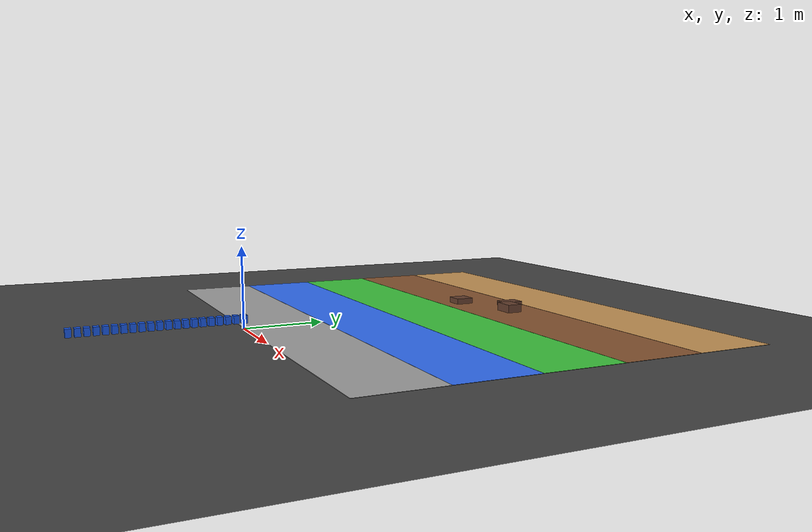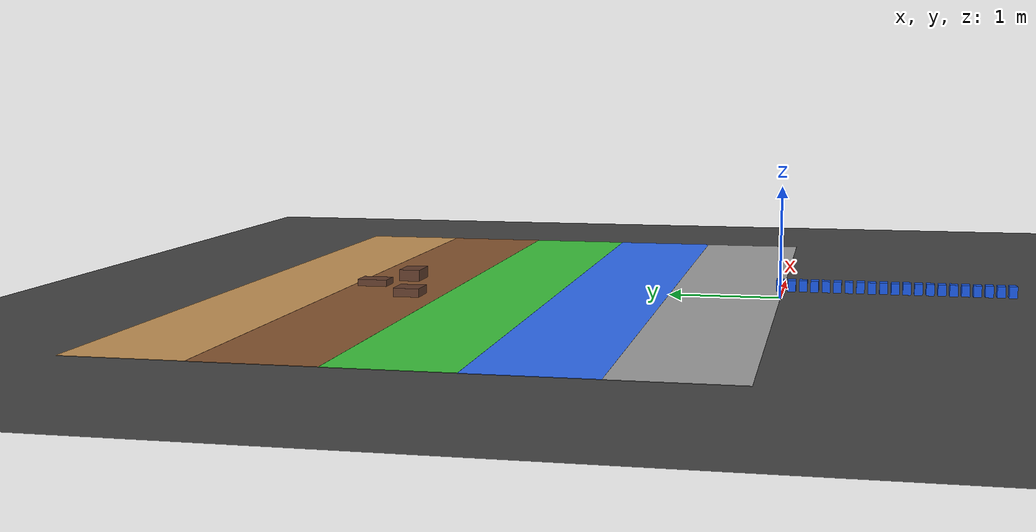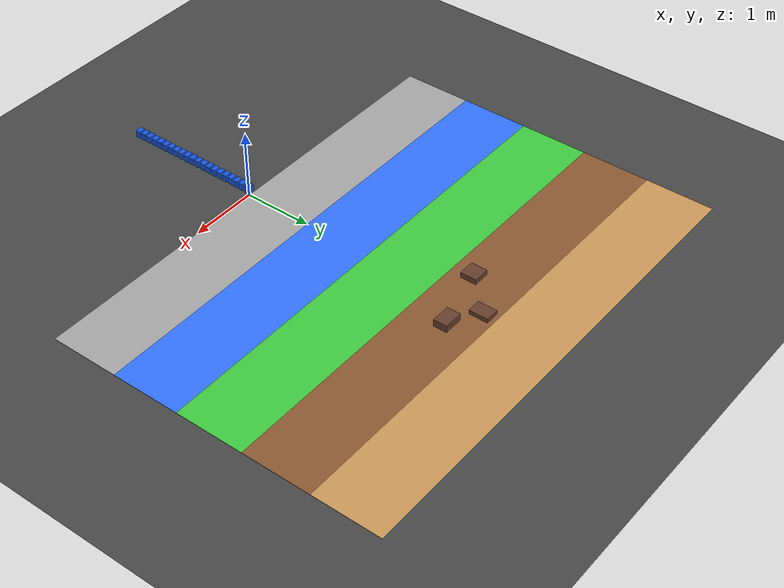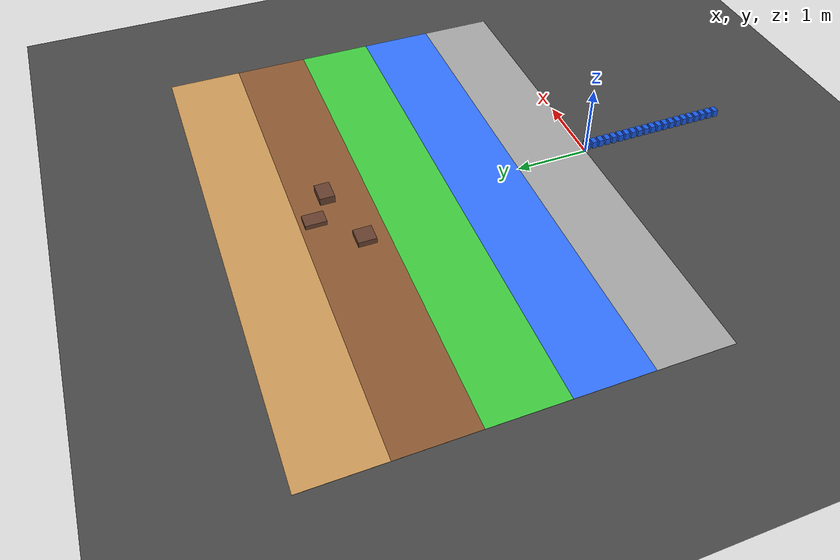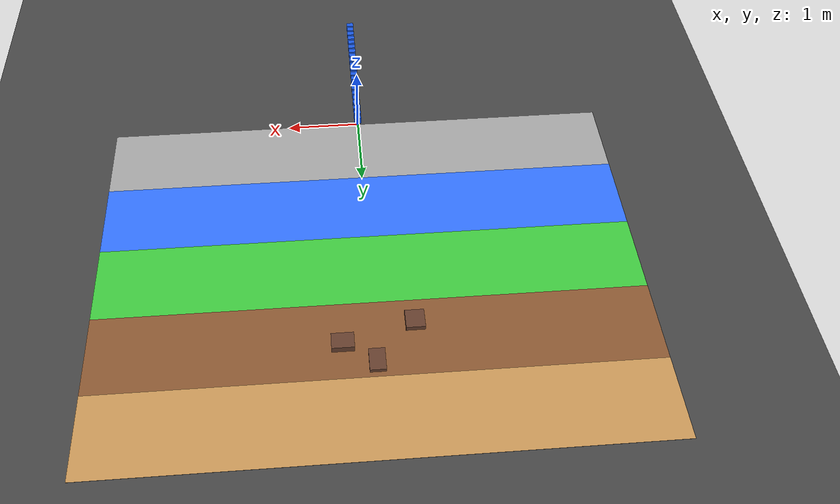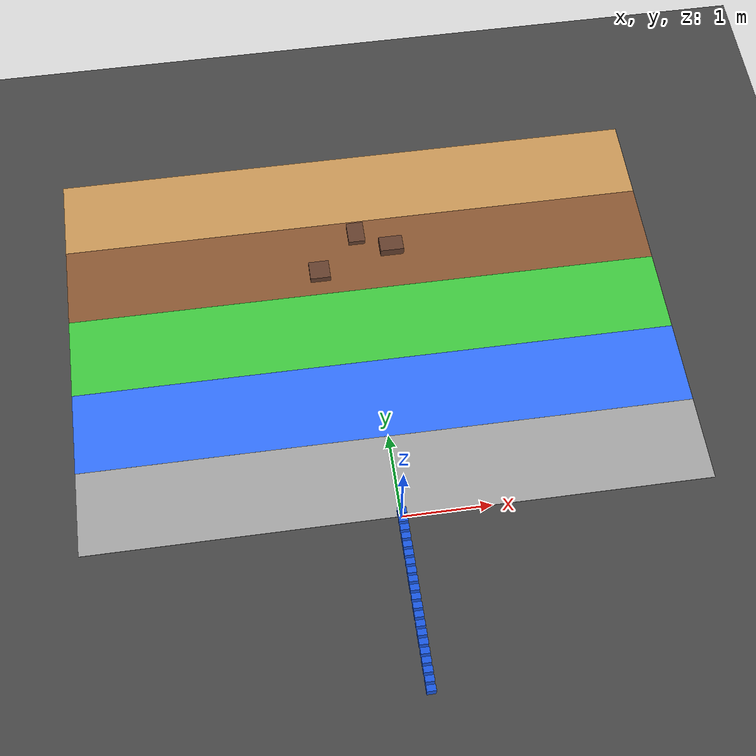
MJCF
<mujoco model="terrain_surveyor_snake">
  <compiler angle="degree" coordinate="local"/>
  <option timestep="0.002" gravity="0 0 -9.81" integrator="RK4">
    <flag contact="enable" energy="enable"/>
  </option>

  <visual>
    <global azimuth="135" elevation="-25"/>
    <quality shadowsize="2048"/>
  </visual>

  <asset>
    <texture name="grid" type="2d" builtin="checker" width="512" height="512" rgb1="0.85 0.85 0.85" rgb2="0.75 0.75 0.75"/>
    <material name="gridmat" texture="grid" texrepeat="8 8" reflectance="0.1"/>
  </asset>

  <worldbody>
    <light name="sun" pos="0 -3 6" dir="0 0 -1" directional="true" diffuse="0.9 0.9 0.9"/>
    <camera name="track" mode="trackcom" pos="-3 -6 3.0" xyaxes="1 -0.15 0 0.08 0.45 1"/>

    <geom name="infinite_collision_floor"
          type="plane"
          pos="0 0 0"
          size="100 100 0.05"
          material="gridmat"
          rgba="0.28 0.28 0.28 1"
          friction="1.0 0.02 0.001"/>

    <geom name="terrain_normal"
          type="box"
          pos="0 0.5 0.003"
          size="3.5 0.5 0.002"
          rgba="0.65 0.65 0.65 1"
          contype="0"
          conaffinity="0"/>

    <geom name="terrain_low_friction"
          type="box"
          pos="0 1.5 0.004"
          size="3.5 0.5 0.002"
          rgba="0.20 0.45 1.00 1"
          contype="0"
          conaffinity="0"/>

    <geom name="terrain_high_friction"
          type="box"
          pos="0 2.5 0.005"
          size="3.5 0.5 0.002"
          rgba="0.25 0.80 0.25 1"
          contype="0"
          conaffinity="0"/>

    <geom name="terrain_rough_base"
          type="box"
          pos="0 3.5 0.006"
          size="3.5 0.5 0.002"
          rgba="0.55 0.35 0.20 1"
          contype="0"
          conaffinity="0"/>

    <geom name="terrain_slope_visual"
          type="box"
          pos="0 4.5 0.007"
          size="3.5 0.5 0.002"
          rgba="0.80 0.60 0.35 1"
          contype="0"
          conaffinity="0"/>

    <geom name="bump_1"
          type="box"
          pos="-0.5 3.3 0.035"
          size="0.12 0.12 0.05"
          rgba="0.40 0.25 0.18 1"
          contype="0"
          conaffinity="0"/>
    <geom name="bump_2"
          type="box"
          pos="0.4 3.55 0.045"
          size="0.14 0.10 0.07"
          rgba="0.40 0.25 0.18 1"
          contype="0"
          conaffinity="0"/>
    <geom name="bump_3"
          type="box"
          pos="0.0 3.8 0.030"
          size="0.10 0.14 0.04"
          rgba="0.40 0.25 0.18 1"
          contype="0"
          conaffinity="0"/>

    <!-- Root of the snake. The freejoint lets the complete robot translate and rotate in the world. -->
    <body name="snake_root" pos="0 0 0.12">
      <freejoint name="root_free"/>
      <geom name="plink_01_box_geom" type="box" size="0.0500 0.0350 0.0500" mass="0.15" rgba="0.10 0.35 0.90 1" friction="1.0 0.02 0.001"/>
      <body name="plink_02_box" pos="0 -0.10 0">
        <joint name="plink_2_MOVE" type="hinge" axis="0 0 1" range="-25 25" damping="0.03" armature="0.001" limited="true"/>
        <geom name="plink_02_box_geom" type="box" size="0.0500 0.0350 0.0500" mass="0.15" rgba="0.10 0.35 0.90 1" friction="1.0 0.02 0.001"/>
        <body name="plink_03_box" pos="0 -0.10 0">
          <joint name="plink_3_MOVE" type="hinge" axis="0 0 1" range="-25 25" damping="0.03" armature="0.001" limited="true"/>
          <geom name="plink_03_box_geom" type="box" size="0.0500 0.0350 0.0500" mass="0.15" rgba="0.10 0.35 0.90 1" friction="1.0 0.02 0.001"/>
          <body name="plink_04_box" pos="0 -0.10 0">
            <joint name="plink_4_MOVE" type="hinge" axis="0 0 1" range="-25 25" damping="0.03" armature="0.001" limited="true"/>
            <geom name="plink_04_box_geom" type="box" size="0.0500 0.0350 0.0500" mass="0.15" rgba="0.10 0.35 0.90 1" friction="1.0 0.02 0.001"/>
            <body name="plink_05_box" pos="0 -0.10 0">
              <joint name="plink_5_MOVE" type="hinge" axis="0 0 1" range="-25 25" damping="0.03" armature="0.001" limited="true"/>
              <geom name="plink_05_box_geom" type="box" size="0.0500 0.0350 0.0500" mass="0.15" rgba="0.10 0.35 0.90 1" friction="1.0 0.02 0.001"/>
              <body name="plink_06_box" pos="0 -0.10 0">
                <joint name="plink_6_MOVE" type="hinge" axis="0 0 1" range="-25 25" damping="0.03" armature="0.001" limited="true"/>
                <geom name="plink_06_box_geom" type="box" size="0.0500 0.0350 0.0500" mass="0.15" rgba="0.10 0.35 0.90 1" friction="1.0 0.02 0.001"/>
                <body name="plink_07_box" pos="0 -0.10 0">
                  <joint name="plink_7_MOVE" type="hinge" axis="0 0 1" range="-25 25" damping="0.03" armature="0.001" limited="true"/>
                  <geom name="plink_07_box_geom" type="box" size="0.0500 0.0350 0.0500" mass="0.15" rgba="0.10 0.35 0.90 1" friction="1.0 0.02 0.001"/>
                  <body name="plink_08_box" pos="0 -0.10 0">
                    <joint name="plink_8_MOVE" type="hinge" axis="0 0 1" range="-25 25" damping="0.03" armature="0.001" limited="true"/>
                    <geom name="plink_08_box_geom" type="box" size="0.0500 0.0350 0.0500" mass="0.15" rgba="0.10 0.35 0.90 1" friction="1.0 0.02 0.001"/>
                    <body name="plink_09_box" pos="0 -0.10 0">
                      <joint name="plink_9_MOVE" type="hinge" axis="0 0 1" range="-25 25" damping="0.03" armature="0.001" limited="true"/>
                      <geom name="plink_09_box_geom" type="box" size="0.0500 0.0350 0.0500" mass="0.15" rgba="0.10 0.35 0.90 1" friction="1.0 0.02 0.001"/>
                      <body name="plink_10_box" pos="0 -0.10 0">
                        <joint name="plink_10_MOVE" type="hinge" axis="0 0 1" range="-25 25" damping="0.03" armature="0.001" limited="true"/>
                        <geom name="plink_10_box_geom" type="box" size="0.0500 0.0350 0.0500" mass="0.15" rgba="0.10 0.35 0.90 1" friction="1.0 0.02 0.001"/>
                        <body name="plink_11_box" pos="0 -0.10 0">
                          <joint name="plink_11_MOVE" type="hinge" axis="0 0 1" range="-25 25" damping="0.03" armature="0.001" limited="true"/>
                          <geom name="plink_11_box_geom" type="box" size="0.0500 0.0350 0.0500" mass="0.15" rgba="0.10 0.35 0.90 1" friction="1.0 0.02 0.001"/>
                          <body name="plink_12_box" pos="0 -0.10 0">
                            <joint name="plink_12_MOVE" type="hinge" axis="0 0 1" range="-25 25" damping="0.03" armature="0.001" limited="true"/>
                            <geom name="plink_12_box_geom" type="box" size="0.0500 0.0350 0.0500" mass="0.15" rgba="0.10 0.35 0.90 1" friction="1.0 0.02 0.001"/>
                            <body name="plink_13_box" pos="0 -0.10 0">
                              <joint name="plink_13_MOVE" type="hinge" axis="0 0 1" range="-25 25" damping="0.03" armature="0.001" limited="true"/>
                              <geom name="plink_13_box_geom" type="box" size="0.0500 0.0350 0.0500" mass="0.15" rgba="0.10 0.35 0.90 1" friction="1.0 0.02 0.001"/>
                              <body name="plink_14_box" pos="0 -0.10 0">
                                <joint name="plink_14_MOVE" type="hinge" axis="0 0 1" range="-25 25" damping="0.03" armature="0.001" limited="true"/>
                                <geom name="plink_14_box_geom" type="box" size="0.0500 0.0350 0.0500" mass="0.15" rgba="0.10 0.35 0.90 1" friction="1.0 0.02 0.001"/>
                                <body name="plink_15_box" pos="0 -0.10 0">
                                  <joint name="plink_15_MOVE" type="hinge" axis="0 0 1" range="-25 25" damping="0.03" armature="0.001" limited="true"/>
                                  <geom name="plink_15_box_geom" type="box" size="0.0500 0.0350 0.0500" mass="0.15" rgba="0.10 0.35 0.90 1" friction="1.0 0.02 0.001"/>
                                  <body name="plink_16_box" pos="0 -0.10 0">
                                    <joint name="plink_16_MOVE" type="hinge" axis="0 0 1" range="-25 25" damping="0.03" armature="0.001" limited="true"/>
                                    <geom name="plink_16_box_geom" type="box" size="0.0500 0.0350 0.0500" mass="0.15" rgba="0.10 0.35 0.90 1" friction="1.0 0.02 0.001"/>
                                    <body name="plink_17_box" pos="0 -0.10 0">
                                      <joint name="plink_17_MOVE" type="hinge" axis="0 0 1" range="-25 25" damping="0.03" armature="0.001" limited="true"/>
                                      <geom name="plink_17_box_geom" type="box" size="0.0500 0.0350 0.0500" mass="0.15" rgba="0.10 0.35 0.90 1" friction="1.0 0.02 0.001"/>
                                      <body name="plink_18_box" pos="0 -0.10 0">
                                        <joint name="plink_18_MOVE" type="hinge" axis="0 0 1" range="-25 25" damping="0.03" armature="0.001" limited="true"/>
                                        <geom name="plink_18_box_geom" type="box" size="0.0500 0.0350 0.0500" mass="0.15" rgba="0.10 0.35 0.90 1" friction="1.0 0.02 0.001"/>
                                        <body name="plink_19_box" pos="0 -0.10 0">
                                          <joint name="plink_19_MOVE" type="hinge" axis="0 0 1" range="-25 25" damping="0.03" armature="0.001" limited="true"/>
                                          <geom name="plink_19_box_geom" type="box" size="0.0500 0.0350 0.0500" mass="0.15" rgba="0.10 0.35 0.90 1" friction="1.0 0.02 0.001"/>
                                          <body name="plink_20_box" pos="0 -0.10 0">
                                            <joint name="plink_20_MOVE" type="hinge" axis="0 0 1" range="-25 25" damping="0.03" armature="0.001" limited="true"/>
                                            <geom name="plink_20_box_geom" type="box" size="0.0500 0.0350 0.0500" mass="0.15" rgba="0.10 0.35 0.90 1" friction="1.0 0.02 0.001"/>
                                            <body name="plink_21_box" pos="0 -0.10 0">
                                              <joint name="plink_21_MOVE" type="hinge" axis="0 0 1" range="-25 25" damping="0.03" armature="0.001" limited="true"/>
                                              <geom name="plink_21_box_geom" type="box" size="0.0500 0.0350 0.0500" mass="0.15" rgba="0.10 0.35 0.90 1" friction="1.0 0.02 0.001"/>
                                            </body>
                                          </body>
                                        </body>
                                      </body>
                                    </body>
                                  </body>
                                </body>
                              </body>
                            </body>
                          </body>
                        </body>
                      </body>
                    </body>
                  </body>
                </body>
              </body>
            </body>
          </body>
        </body>
      </body>

    </body>
  </worldbody>

  <actuator>
    <position name="act_plink_2_MOVE" joint="plink_2_MOVE" kp="10" ctrlrange="-0.436332 0.436332" forcerange="-10 10"/>
    <position name="act_plink_3_MOVE" joint="plink_3_MOVE" kp="10" ctrlrange="-0.436332 0.436332" forcerange="-10 10"/>
    <position name="act_plink_4_MOVE" joint="plink_4_MOVE" kp="10" ctrlrange="-0.436332 0.436332" forcerange="-10 10"/>
    <position name="act_plink_5_MOVE" joint="plink_5_MOVE" kp="10" ctrlrange="-0.436332 0.436332" forcerange="-10 10"/>
    <position name="act_plink_6_MOVE" joint="plink_6_MOVE" kp="10" ctrlrange="-0.436332 0.436332" forcerange="-10 10"/>
    <position name="act_plink_7_MOVE" joint="plink_7_MOVE" kp="10" ctrlrange="-0.436332 0.436332" forcerange="-10 10"/>
    <position name="act_plink_8_MOVE" joint="plink_8_MOVE" kp="10" ctrlrange="-0.436332 0.436332" forcerange="-10 10"/>
    <position name="act_plink_9_MOVE" joint="plink_9_MOVE" kp="10" ctrlrange="-0.436332 0.436332" forcerange="-10 10"/>
    <position name="act_plink_10_MOVE" joint="plink_10_MOVE" kp="10" ctrlrange="-0.436332 0.436332" forcerange="-10 10"/>
    <position name="act_plink_11_MOVE" joint="plink_11_MOVE" kp="10" ctrlrange="-0.436332 0.436332" forcerange="-10 10"/>
    <position name="act_plink_12_MOVE" joint="plink_12_MOVE" kp="10" ctrlrange="-0.436332 0.436332" forcerange="-10 10"/>
    <position name="act_plink_13_MOVE" joint="plink_13_MOVE" kp="10" ctrlrange="-0.436332 0.436332" forcerange="-10 10"/>
    <position name="act_plink_14_MOVE" joint="plink_14_MOVE" kp="10" ctrlrange="-0.436332 0.436332" forcerange="-10 10"/>
    <position name="act_plink_15_MOVE" joint="plink_15_MOVE" kp="10" ctrlrange="-0.436332 0.436332" forcerange="-10 10"/>
    <position name="act_plink_16_MOVE" joint="plink_16_MOVE" kp="10" ctrlrange="-0.436332 0.436332" forcerange="-10 10"/>
    <position name="act_plink_17_MOVE" joint="plink_17_MOVE" kp="10" ctrlrange="-0.436332 0.436332" forcerange="-10 10"/>
    <position name="act_plink_18_MOVE" joint="plink_18_MOVE" kp="10" ctrlrange="-0.436332 0.436332" forcerange="-10 10"/>
    <position name="act_plink_19_MOVE" joint="plink_19_MOVE" kp="10" ctrlrange="-0.436332 0.436332" forcerange="-10 10"/>
    <position name="act_plink_20_MOVE" joint="plink_20_MOVE" kp="10" ctrlrange="-0.436332 0.436332" forcerange="-10 10"/>
    <position name="act_plink_21_MOVE" joint="plink_21_MOVE" kp="10" ctrlrange="-0.436332 0.436332" forcerange="-10 10"/>
  </actuator>
</mujoco>
